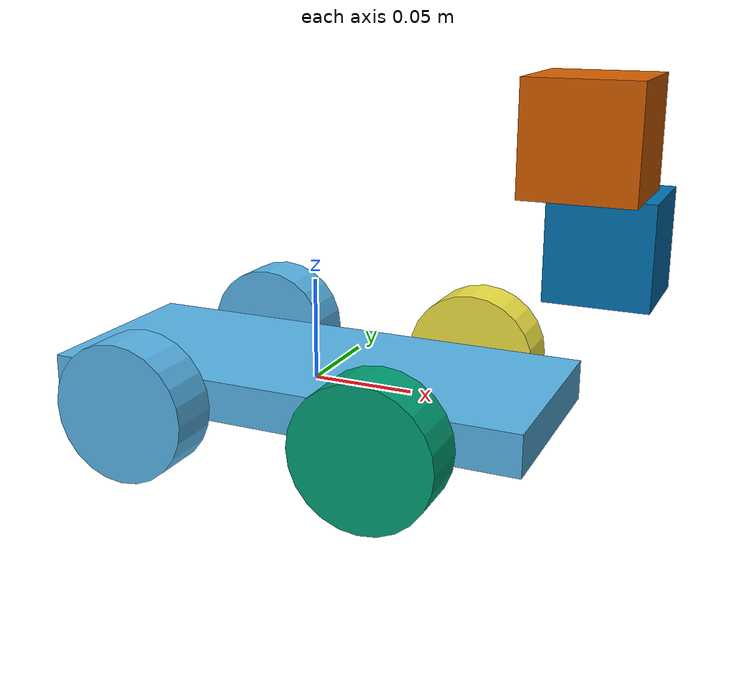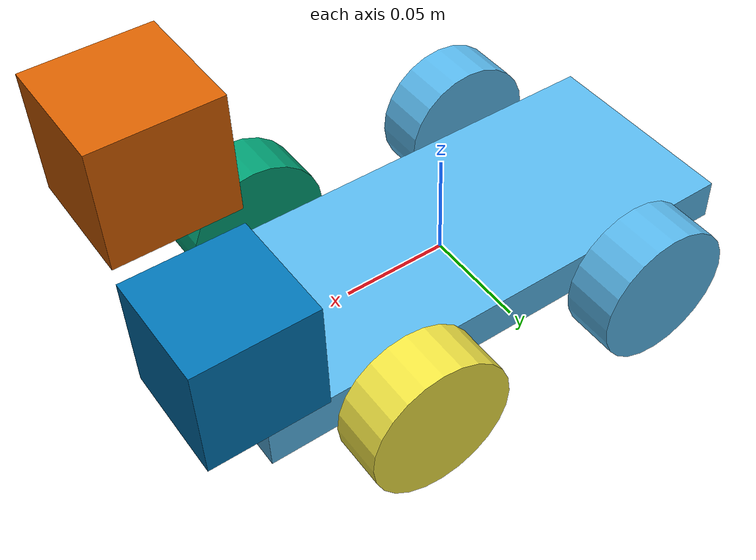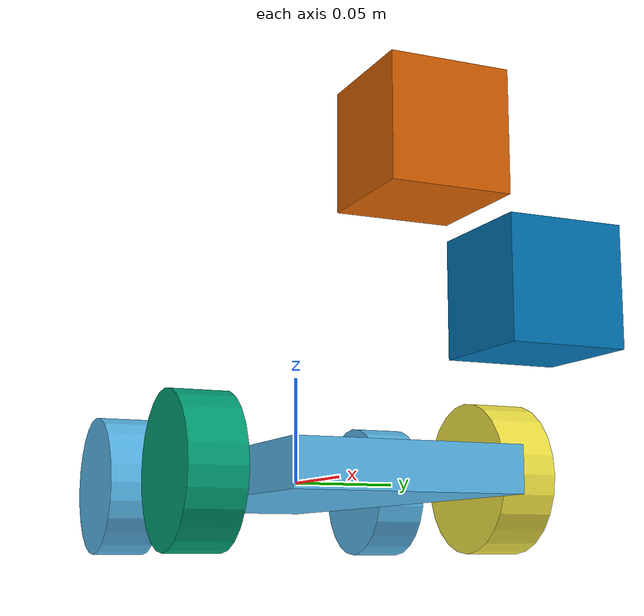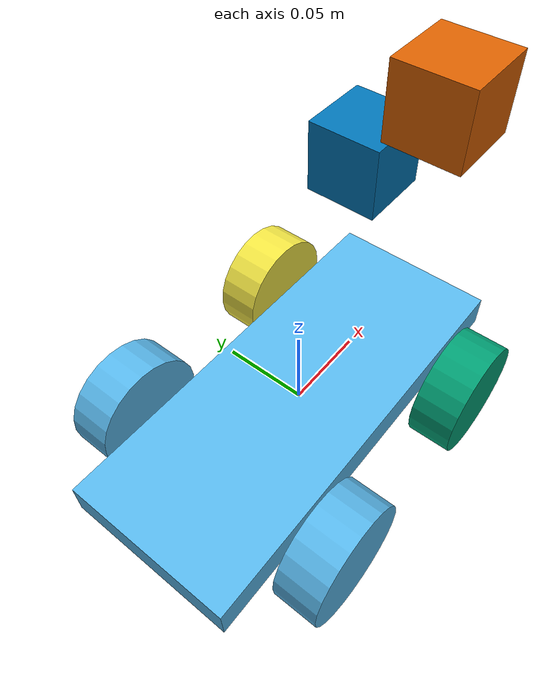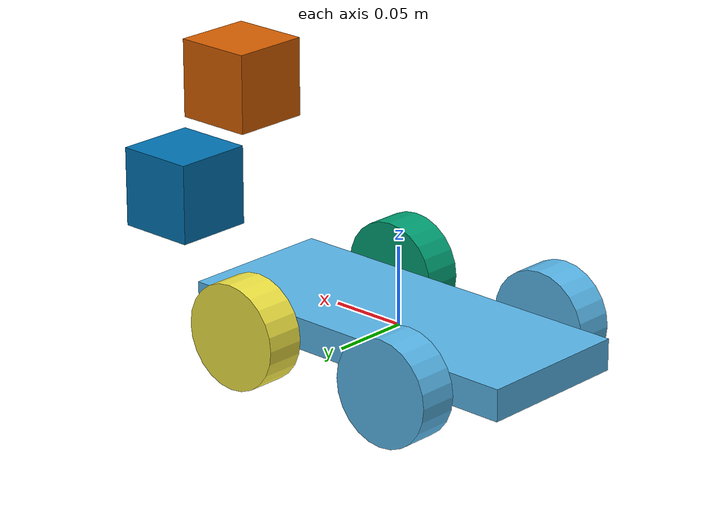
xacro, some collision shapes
<?xml version='1.0'?>

<robot name="udacity_bot" xmlns:xacro="http://www.ros.org/wiki/xacro">
<xacro:include filename="$(find udacity_bot)/urdf/udacity_bot.gazebo" />

  <link name="robot_footprint"></link>

  <joint name="robot_footprint_joint" type="fixed">
    <origin xyz="0 0 0" rpy="0 0 0" />
    <parent link="robot_footprint"/>
    <child link="chassis" />
  </joint>

  <link name='chassis'>
	<pose>0 0 0.1 0 0 0</pose>
	<inertial>
		<mass value="0.5"/>
		<origin xyz="0.0 0 0" rpy=" 0 0 0"/>
		<inertia
			  ixx="0.1" ixy="0" ixz="0"
			  iyy="0.1" iyz="0"
			  izz="0.1"
		/>
	</inertial>

	<collision name='chassis_collision'>
		<origin xyz="0 0 0" rpy=" 0 0 0"/>
     		<geometry>
     			<box size=".24 .1 .02"/>
    		</geometry>
	</collision>

	<visual name='chassis_visual'>
		  <origin xyz="0 0 0" rpy=" 0 0 0"/>
		  <geometry>
			<box size=".24 .1 .02"/>
		  </geometry>
	</visual>

		<visual name="rightb_wheel_visual" >
		<origin xyz="-0.06 0.07 0" rpy="1.570796 0 0"/>
			  <geometry>
				<cylinder length="0.025" radius="0.0335"/>
			  </geometry>
		</visual>

		<inertial>
			  <mass value="0.033"/>
			  <origin xyz="0.0 0 0" rpy=" 0 0 0"/>
			  <inertia
				  ixx="0.1" ixy="0" ixz="0"
				  iyy="0.1" iyz="0"
				  izz="0.1"
			  />
    	  	</inertial>

		<collision name="rightb_wheel_collision">
			<origin xyz="-0.06 0.07 0" rpy="1.570796 0 0"/>
			  <geometry>
				<cylinder length="0.025" radius="0.0335"/>
			  </geometry>
		 <surface>
        		<friction>
         		 <ode>
         		   <mu>0</mu>
          		  <mu2>0</mu2>
           		 <slip1>1.0</slip1>
          		  <slip2>1.0</slip2>
         			 </ode>
       			 </friction>
      </surface>

		</collision>

		<visual name="leftb_wheel_visual">
		<origin xyz="-0.06 -0.07 0" rpy="1.570796 0 0"/>
			  <geometry>
				<cylinder length="0.025" radius="0.0335"/>
			  </geometry>
		</visual>
		<inertial>
			  <mass value="0.033"/>
			  <origin xyz="0.0 0 0" rpy=" 0 0 0"/>
			  <inertia
				  ixx="0.1" ixy="0" ixz="0"
				  iyy="0.1" iyz="0"
				  izz="0.1"
			  />
    		</inertial>
		<collision name="leftb_wheel_collision">
		<origin xyz="-0.06 -0.07 0" rpy="1.570796 0 0"/>
			  <geometry>
				<cylinder length="0.025" radius="0.0335"/>
			  </geometry>
 			<surface>
        		 <friction>
         		 	<ode>
         		 	  <mu>0</mu>
          		 	 <mu2>0</mu2>
           			 <slip1>1.0</slip1>
          			  <slip2>1.0</slip2>
         			 </ode>
       			 </friction>
      			</surface>
		</collision>
  </link>

	<link name='rightf_wheel'>
		<visual>
		 <origin xyz="0.0 0 0" rpy=" 0 0 0"/>
			  <geometry>
				<cylinder length="0.025" radius="0.0335"/>
			  </geometry>
		</visual>

		<inertial>
			  <mass value="0.033"/>
			  <origin xyz="0.0 0 0" rpy=" 0 0 0"/>
			  <inertia
				  ixx="0.1" ixy="0" ixz="0"
				  iyy="0.1" iyz="0"
				  izz="0.1"
			  />
    		</inertial>

		<collision>
		<origin xyz="0.0 0 0" rpy=" 0 0 0"/>
			  <geometry>
				<cylinder length="0.025" radius="0.0335"/>
			  </geometry>
			</collision>
	</link>
	<link name='leftf_wheel'>
		<visual>
			  <geometry>
				<cylinder length="0.025" radius="0.0335"/>
			  </geometry>
		</visual>
		<inertial>
			  <mass value="0.033"/>
			  <origin xyz="0.0 0 0" rpy=" 0 0 0"/>
			  <inertia
				  ixx="0.1" ixy="0" ixz="0"
				  iyy="0.1" iyz="0"
				  izz="0.1"
			  />
    		</inertial>
		<collision>
			  <origin xyz="0 0 0" rpy=" 0 0 0"/>
			  <geometry>
				<cylinder length="0.025" radius="0.03"/>
			  </geometry>
		</collision>
	</link>

	<link name="camera">
     <visual>
     	<origin xyz="0 0 0" rpy="0 0 0"/>
       <geometry>
        <box size=".05 .05 .05"/>
      </geometry>
    </visual>

    <inertial>
      <mass value="0.01"/>
      <origin xyz="0 0 0" rpy=" 0 0 0"/>
      <inertia
          ixx="0.000001" ixy="0" ixz="0"
          iyy="0.000001" iyz="0"
          izz="0.000001"
      />
    </inertial>

    <collision>
      <origin xyz="0 0 0" rpy="0 0 0"/>
       <geometry>
        <box size=".05 .05 .05"/>
      </geometry>
    </collision>

</link>

<link name="hokuyo">
     <visual>
      <origin xyz="0 0 0" rpy="0 0 0"/>
       <geometry>
	<mesh filename="package://udacity_bot/meshes/hokuyo.dae"/>
      </geometry>
    </visual>

    <inertial>
      <mass value="0.1"/>
      <origin xyz="0 0 0" rpy=" 0 0 0"/>
      <inertia
          ixx="0.000001" ixy="0" ixz="0"
          iyy="0.000001" iyz="0"
          izz="0.000001"
      />
    </inertial>

	    <collision>
	      <origin xyz="0 0 0" rpy="0 0 0"/>
	       <geometry>
	        <box size=".05 .05 .05"/>
	      </geometry>
	    </collision>
	</link>

	  <joint name="hokuyo_joint" type="fixed">
	    <origin xyz="0.13 0 0.127" rpy="0 0 0"/>
	    <parent link="chassis"/>
	    <child link="hokuyo"/>
	  </joint>

	<joint type="fixed" name="camera_joint">
		<origin xyz="0.13 0.05 0.07" rpy="0 0 0"/>
		<child link="camera"/>
		<parent link="chassis"/>
		<axis xyz="0 0 0" rpy="0 0 0"/>
  	</joint>

	<joint type="continuous" name="left__front_wheel_hinge">
		<origin xyz="0.06 0.07 0" rpy="1.570796 0 0"/>
		<child link="leftf_wheel"/>
		<parent link="chassis"/>
		<axis xyz="0 0 1" rpy="0 0 0"/>
		<limit effort="10000" velocity="1000"/>
		<joint_properties damping="1.0" friction="0.0"/>
  	</joint>

  	<joint type="continuous" name="right_front_wheel_hinge">
		<origin xyz="0.06 -0.07 0" rpy="1.570796 0 0"/>
		<child link="rightf_wheel"/>
		<parent link="chassis"/>
		<axis xyz="0 0 1" rpy="0 0 0"/>
		<limit effort="10000" velocity="1000"/>
		<joint_properties damping="1.0" friction="0.0"/>
  	</joint>
</robot>
